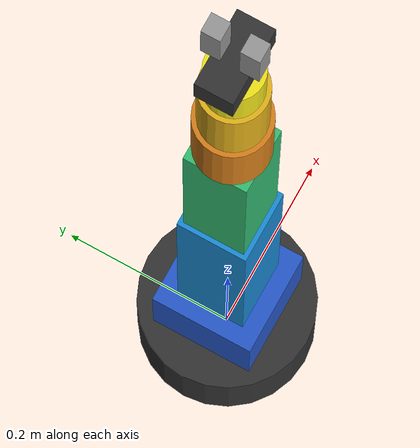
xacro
<?xml version="1.0"?>
<robot name="devotics_arm" xmlns:xacro="http://www.ros.org/wiki/xacro">
<xacro:arg name="sim_mode" default="false"/>

    <!-- CONSTANTS & PROPERTIES                                       -->
    <xacro:property name="pi_val" value="3.14159265359"/>

    <!-- Link Dimensions -->
    <xacro:property name="base_radius"       value="0.10"/>
    <xacro:property name="base_length"       value="0.10"/>

    <xacro:property name="shoulder_size_x"   value="0.12"/>
    <xacro:property name="shoulder_size_y"   value="0.12"/>
    <xacro:property name="shoulder_size_z"   value="0.10"/>

    <xacro:property name="upper_arm_size_x"  value="0.08"/>
    <xacro:property name="upper_arm_size_y"  value="0.08"/>
    <xacro:property name="upper_arm_length"  value="0.30"/>

    <xacro:property name="forearm_size_x"    value="0.07"/>
    <xacro:property name="forearm_size_y"    value="0.07"/>
    <xacro:property name="forearm_length"    value="0.25"/>

    <xacro:property name="wrist1_radius"     value="0.04"/>
    <xacro:property name="wrist1_length"     value="0.10"/>

    <xacro:property name="wrist2_radius"     value="0.035"/>
    <xacro:property name="wrist2_length"     value="0.10"/>

    <xacro:property name="wrist3_radius"     value="0.03"/>
    <xacro:property name="wrist3_length"     value="0.06"/>

    <xacro:property name="finger_size_x"     value="0.02"/>
    <xacro:property name="finger_size_y"     value="0.02"/>
    <xacro:property name="finger_size_z"     value="0.06"/>
    <xacro:property name="finger_stroke"     value="0.03"/>

    <!-- Joint Limits -->
    <xacro:property name="j1_lower" value="-3.14"/>
    <xacro:property name="j1_upper" value="3.14"/>

    <xacro:property name="j2_lower" value="-1.57"/>
    <xacro:property name="j2_upper" value="1.57"/>

    <xacro:property name="j3_lower" value="-2.0"/>
    <xacro:property name="j3_upper" value="2.0"/>

    <xacro:property name="j4_lower" value="-1.57"/>
    <xacro:property name="j4_upper" value="1.57"/>

    <xacro:property name="j5_lower" value="-3.14"/>
    <xacro:property name="j5_upper" value="3.14"/>

    <xacro:property name="j6_lower" value="-3.14"/>
    <xacro:property name="j6_upper" value="3.14"/>

        <!-- INERTIA MACROS -->
    <xacro:macro name="cylinder_inertia" params="mass radius length *origin">
        <inertial>
            <xacro:insert_block name="origin"/>
            <mass value="${mass}"/>
            <inertia
                ixx="${mass*(3*radius*radius + length*length)/12}"
                iyy="${mass*(3*radius*radius + length*length)/12}"
                izz="${mass*radius*radius/2}"
                ixy="0" ixz="0" iyz="0"/>
        </inertial>
    </xacro:macro>

    <xacro:macro name="box_inertia" params="mass x y z *origin">
        <inertial>
            <xacro:insert_block name="origin"/>
            <mass value="${mass}"/>
            <inertia
                ixx="${mass*(y*y + z*z)/12}"
                iyy="${mass*(x*x + z*z)/12}"
                izz="${mass*(x*x + y*y)/12}"
                ixy="0" ixz="0" iyz="0"/>
        </inertial>
    </xacro:macro>

    <!-- MATERIALS                                                    -->
    <material name="base_color">
        <color rgba="0.20 0.20 0.20 1"/>
    </material>

    <material name="shoulder_color">
        <color rgba="0.15 0.35 0.80 1"/>
    </material>

    <material name="upper_arm_color">
        <color rgba="0.10 0.55 0.85 1"/>
    </material>

    <material name="forearm_color">
        <color rgba="0.20 0.75 0.45 1"/>
    </material>

    <material name="wrist1_color">
        <color rgba="0.85 0.50 0.10 1"/>
    </material>

    <material name="wrist2_color">
        <color rgba="0.90 0.70 0.10 1"/>
    </material>

    <material name="wrist3_color">
        <color rgba="0.95 0.90 0.10 1"/>
    </material>

    <material name="gripper_base_color">
        <color rgba="0.20 0.20 0.20 1"/>
    </material>

    <material name="finger_color">
        <color rgba="0.60 0.60 0.60 1"/>
    </material>

    <!-- BASE LINK                                                    -->
    <link name="base_link">
        <visual>
            <origin xyz="0 0 ${base_length / 2}" rpy="0 0 0"/>
            <geometry>
                <cylinder radius="${base_radius}" length="${base_length}"/>
            </geometry>
            <material name="base_color"/>
        </visual>
        <collision>
            <origin xyz="0 0 ${base_length / 2}" rpy="0 0 0"/>
            <geometry>
                <cylinder radius="${base_radius}" length="${base_length}"/>
            </geometry>
        </collision>
        <xacro:cylinder_inertia mass="2.5" radius="${base_radius}" length="${base_length}">
            <origin xyz="0 0 ${base_length/2}" rpy="0 0 0"/>
        </xacro:cylinder_inertia>
    </link>
        <!-- WORLD LINK (Anchors the robot base to the Gazebo ground) -->
    <link name="world"/>

    <joint name="world_to_base_joint" type="fixed">
        <parent link="world"/>
        <child link="base_link"/>
        <origin xyz="0 0 0" rpy="0 0 0"/>
    </joint>

    <!-- SHOULDER LINK & JOINT 1                                      -->
    <link name="shoulder_link">
        <visual>
            <origin xyz="0 0 ${shoulder_size_z / 2}" rpy="0 0 0"/>
            <geometry>
                <box size="${shoulder_size_x} ${shoulder_size_y} ${shoulder_size_z}"/>
            </geometry>
            <material name="shoulder_color"/>
        </visual>
        <collision>
            <origin xyz="0 0 ${shoulder_size_z / 2}" rpy="0 0 0"/>
            <geometry>
                <box size="${shoulder_size_x} ${shoulder_size_y} ${shoulder_size_z}"/>
            </geometry>
        </collision>
        <xacro:box_inertia mass="1.2" x="0.12" y="0.12" z="0.10">
            <origin xyz="0 0 0.05" rpy="0 0 0"/>
        </xacro:box_inertia>
    </link>

    <joint name="joint1" type="revolute">
        <parent link="base_link"/>
        <child link="shoulder_link"/>
        <origin xyz="0 0 ${base_length}" rpy="0 0 0"/>
        <axis xyz="0 0 1"/>
        <limit lower="${j1_lower}" upper="${j1_upper}" effort="20" velocity="1.0"/>
    </joint>

    <!-- UPPER ARM LINK & JOINT 2                                     -->
    <link name="upper_arm_link">
        <visual>
            <origin xyz="0 0 ${upper_arm_length / 2}" rpy="0 0 0"/>
            <geometry>
                <box size="${upper_arm_size_x} ${upper_arm_size_y} ${upper_arm_length}"/>
            </geometry>
            <material name="upper_arm_color"/>
        </visual>
        <collision>
            <origin xyz="0 0 ${upper_arm_length / 2}" rpy="0 0 0"/>
            <geometry>
                <box size="${upper_arm_size_x} ${upper_arm_size_y} ${upper_arm_length}"/>
            </geometry>
        </collision>
        <xacro:box_inertia mass="0.9" x="${upper_arm_size_x}" y="${upper_arm_size_y}" z="${upper_arm_length}">
            <origin xyz="0 0 ${upper_arm_length/2}" rpy="0 0 0"/>
        </xacro:box_inertia>
    </link>

    <joint name="joint2" type="revolute">
        <parent link="shoulder_link"/>
        <child link="upper_arm_link"/>
        <origin xyz="0 0 ${shoulder_size_z}" rpy="0 0 0"/>
        <axis xyz="0 1 0"/>
        <limit lower="${j2_lower}" upper="${j2_upper}" effort="20" velocity="1.0"/>
    </joint>

    <!-- FOREARM LINK & JOINT 3                                       -->
    <link name="forearm_link">
        <visual>
            <origin xyz="0 0 ${forearm_length / 2}" rpy="0 0 0"/>
            <geometry>
                <box size="${forearm_size_x} ${forearm_size_y} ${forearm_length}"/>
            </geometry>
            <material name="forearm_color"/>
        </visual>
        <collision>
            <origin xyz="0 0 ${forearm_length / 2}" rpy="0 0 0"/>
            <geometry>
                <box size="${forearm_size_x} ${forearm_size_y} ${forearm_length}"/>
            </geometry>
        </collision>
        <xacro:box_inertia mass="0.7" x="${forearm_size_x}" y="${forearm_size_y}" z="${forearm_length}">
            <origin xyz="0 0 ${forearm_length/2}" rpy="0 0 0"/>
        </xacro:box_inertia>
    </link>

    <joint name="joint3" type="revolute">
        <parent link="upper_arm_link"/>
        <child link="forearm_link"/>
        <origin xyz="0 0 ${upper_arm_length}" rpy="0 0 0"/>
        <axis xyz="0 1 0"/>
        <limit lower="${j3_lower}" upper="${j3_upper}" effort="15" velocity="1.0"/>
    </joint>

    <!-- WRIST LINK 1 & JOINT 4 (PITCH)                               -->
    <link name="wrist1_link">
        <visual>
            <origin xyz="0 0 ${wrist1_length / 2}" rpy="0 0 0"/>
            <geometry>
                <cylinder radius="${wrist1_radius}" length="${wrist1_length}"/>
            </geometry>
            <material name="wrist1_color"/>
        </visual>
        <collision>
            <origin xyz="0 0 ${wrist1_length / 2}" rpy="0 0 0"/>
            <geometry>
                <cylinder radius="${wrist1_radius}" length="${wrist1_length}"/>
            </geometry>
        </collision>
        <xacro:cylinder_inertia mass="0.3" radius="0.04" length="0.10">
            <origin xyz="0 0 0.05" rpy="0 0 0"/>
        </xacro:cylinder_inertia>
    </link>

    <joint name="joint4" type="revolute">
        <parent link="forearm_link"/>
        <child link="wrist1_link"/>
        <origin xyz="0 0 ${forearm_length}" rpy="0 0 0"/>
        <axis xyz="0 1 0"/>
        <limit lower="${j4_lower}" upper="${j4_upper}" effort="10" velocity="1.0"/>
    </joint>

    <!-- WRIST LINK 2 & JOINT 5 (ROLL)                                -->
    <link name="wrist2_link">
        <visual>
            <origin xyz="0 0 ${wrist2_length / 2}" rpy="0 0 0"/>
            <geometry>
                <cylinder radius="${wrist2_radius}" length="${wrist2_length}"/>
            </geometry>
            <material name="wrist2_color"/>
        </visual>
        <collision>
            <origin xyz="0 0 ${wrist2_length / 2}" rpy="0 0 0"/>
            <geometry>
                <cylinder radius="${wrist2_radius}" length="${wrist2_length}"/>
            </geometry>
        </collision>
        <xacro:cylinder_inertia mass="0.25" radius="0.035" length="0.10">
            <origin xyz="0 0 0.05" rpy="0 0 0"/>
        </xacro:cylinder_inertia>
    </link>

    <joint name="joint5" type="revolute">
        <parent link="wrist1_link"/>
        <child link="wrist2_link"/>
        <origin xyz="0 0 ${wrist1_length}" rpy="0 0 0"/>
        <axis xyz="0 0 1"/>
        <limit lower="${j5_lower}" upper="${j5_upper}" effort="10" velocity="1.5"/>
    </joint>

    <!-- WRIST LINK 3 & JOINT 6 (YAW / TOOL FLANGE)                   -->
    <link name="wrist3_link">
        <visual>
            <origin xyz="0 0 ${wrist3_length / 2}" rpy="0 0 0"/>
            <geometry>
                <cylinder radius="${wrist3_radius}" length="${wrist3_length}"/>
            </geometry>
            <material name="wrist3_color"/>
        </visual>
        <collision>
            <origin xyz="0 0 ${wrist3_length / 2}" rpy="0 0 0"/>
            <geometry>
                <cylinder radius="${wrist3_radius}" length="${wrist3_length}"/>
            </geometry>
        </collision>
        <xacro:cylinder_inertia mass="0.15" radius="0.03" length="0.06">
            <origin xyz="0 0 0.03" rpy="0 0 0"/>
        </xacro:cylinder_inertia>
    </link>

    <joint name="joint6" type="revolute">
        <parent link="wrist2_link"/>
        <child link="wrist3_link"/>
        <origin xyz="0 0 ${wrist2_length}" rpy="0 0 0"/>
        <axis xyz="0 1 0"/>
        <limit lower="${j6_lower}" upper="${j6_upper}" effort="5" velocity="2.0"/>
    </joint>

    <!-- GRIPPER BASE LINK & FIXED JOINT                              -->
    <link name="gripper_base_link">
        <visual>
            <origin xyz="0 0 0.02" rpy="0 0 0"/>
            <geometry>
                <box size="0.08 0.04 0.04"/>
            </geometry>
            <material name="gripper_base_color"/>
        </visual>
        <collision>
            <origin xyz="0 0 0.02" rpy="0 0 0"/>
            <geometry>
                <box size="0.08 0.04 0.04"/>
            </geometry>
        </collision>
        <xacro:box_inertia mass="0.2" x="0.08" y="0.04" z="0.04">
            <origin xyz="0 0 0.02" rpy="0 0 0"/>
        </xacro:box_inertia>
    </link>

    <joint name="gripper_base_joint" type="fixed">
        <parent link="wrist3_link"/>
        <child link="gripper_base_link"/>
        <origin xyz="0 0 ${wrist3_length}" rpy="0 0 0"/>
    </joint>

    <!-- GRIPPER FINGERS (PRISMATIC)                                  -->
    <link name="left_finger_link">
        <visual>
            <origin xyz="0 0 ${finger_size_z / 2}" rpy="0 0 0"/>
            <geometry>
                <box size="${finger_size_x} ${finger_size_y} ${finger_size_z}"/>
            </geometry>
            <material name="finger_color"/>
        </visual>
        <collision>
            <origin xyz="0 0 ${finger_size_z / 2}" rpy="0 0 0"/>
            <geometry>
                <box size="${finger_size_x} ${finger_size_y} ${finger_size_z}"/>
            </geometry>
        </collision>
        <xacro:box_inertia mass="0.05" x="0.02" y="0.02" z="0.06">
            <origin xyz="0 0.02 0.03" rpy="0 0 0"/>
        </xacro:box_inertia>
    </link>

    <joint name="left_finger_joint" type="prismatic">
        <parent link="gripper_base_link"/>
        <child link="left_finger_link"/>
        <origin xyz="0 0.02 0.04" rpy="0 0 0"/>
        <axis xyz="0 1 0"/>
        <limit lower="0.0" upper="${finger_stroke}" effort="10" velocity="0.1"/>
    </joint>

    <link name="right_finger_link">
        <visual>
            <origin xyz="0 0 ${finger_size_z / 2}" rpy="0 0 0"/>
            <geometry>
                <box size="${finger_size_x} ${finger_size_y} ${finger_size_z}"/>
            </geometry>
            <material name="finger_color"/>
        </visual>
        <collision>
            <origin xyz="0 0 ${finger_size_z / 2}" rpy="0 0 0"/>
            <geometry>
                <box size="${finger_size_x} ${finger_size_y} ${finger_size_z}"/>
            </geometry>
        </collision>
        <xacro:box_inertia mass="0.05" x="0.02" y="0.02" z="0.06">
            <origin xyz="0 -0.02 0.03" rpy="0 0 0"/>
        </xacro:box_inertia>
    </link>

    <joint name="right_finger_joint" type="prismatic">
        <parent link="gripper_base_link"/>
        <child link="right_finger_link"/>
        <origin xyz="0 -0.02 0.04" rpy="0 0 0"/>
        <axis xyz="0 -1 0"/>
        <limit lower="0.0" upper="${finger_stroke}" effort="10" velocity="0.1"/>
    </joint>

    <!-- TOOL CENTER POINT (TCP / tool0)                              -->
    <!-- Virtual frame at the grasp center between finger tips        -->
    <link name="tool0"/>

    <joint name="tool0_joint" type="fixed">
        <parent link="gripper_base_link"/>
        <child link="tool0"/>
        <origin xyz="0 0 0.10" rpy="0 0 0"/>
    </joint>

    <!-- ROS2_CONTROL HARDWARE INTERFACE (MOCK SYSTEM)                -->
    <xacro:include filename="devotics_arm.ros2_control.xacro"/>
<xacro:devotics_arm_ros2_control name="DevoticsMockHardware" sim_mode="$(arg sim_mode)"/>

<!-- Gazebo ROS 2 Control Plugin -->
<gazebo>
    <plugin filename="gz_ros2_control-system" name="gz_ros2_control::GazeboSimROS2ControlPlugin">
        <parameters>$(find devotics_arm_moveit_config)/config/ros2_controllers.yaml</parameters>
    </plugin>
</gazebo>

</robot>
